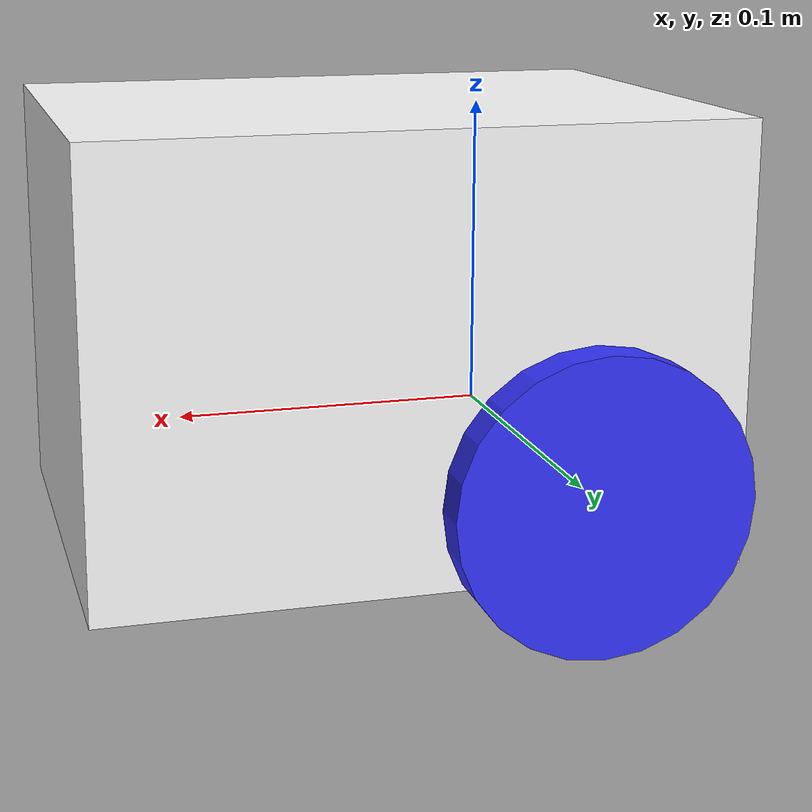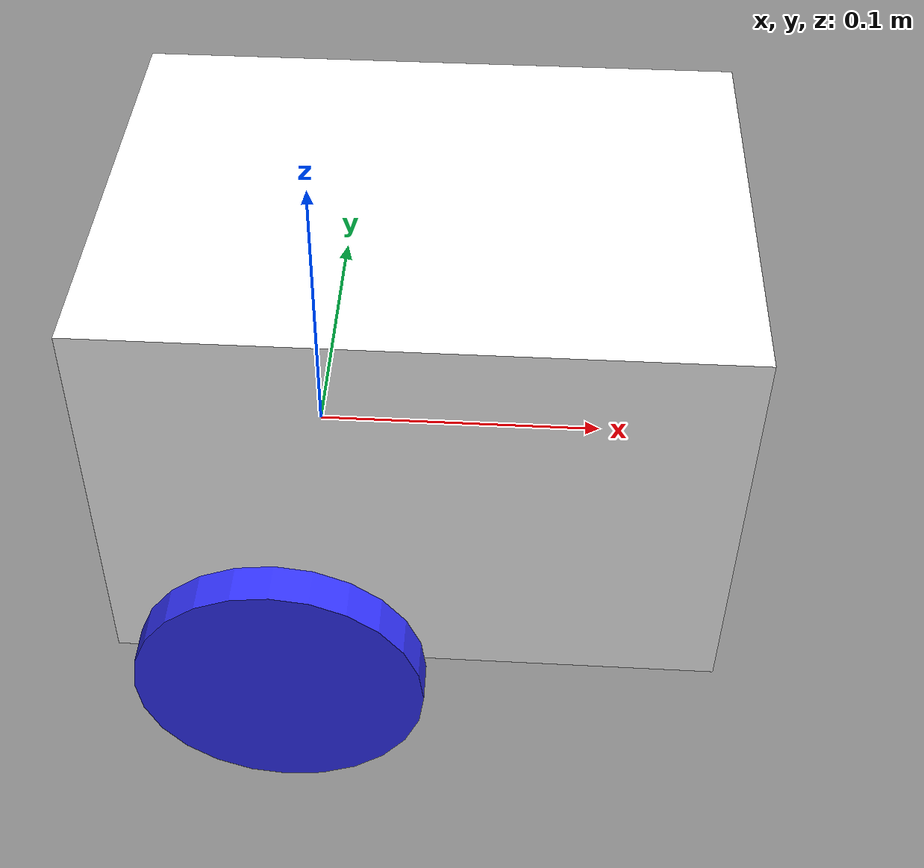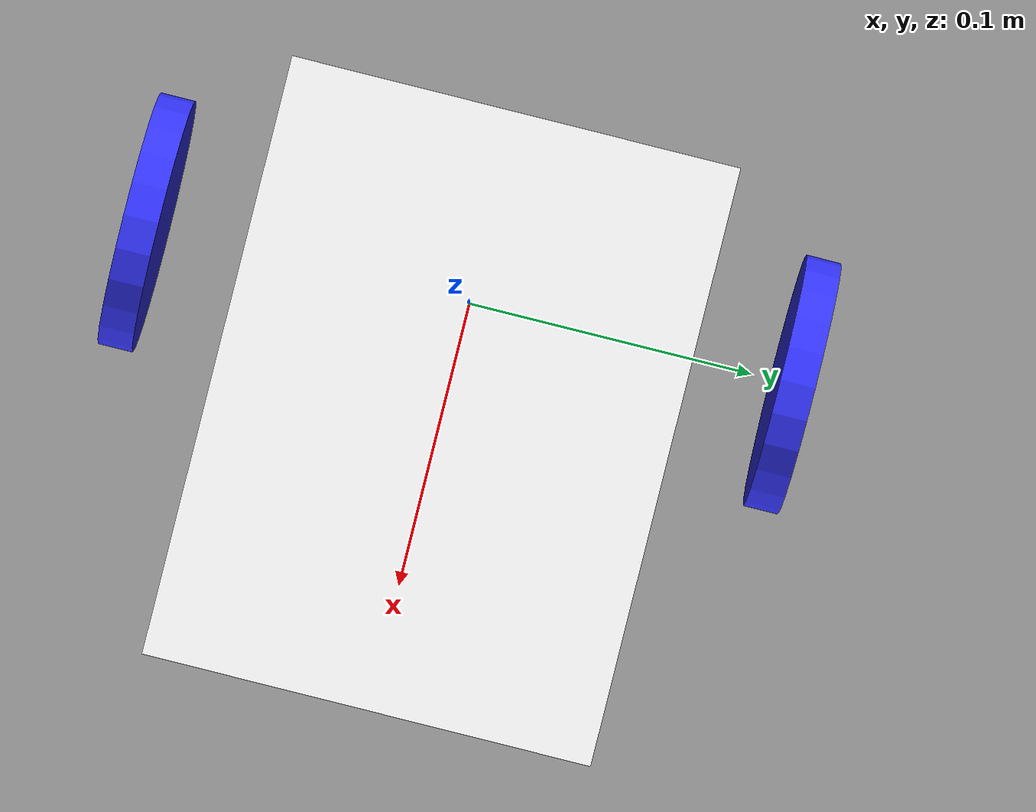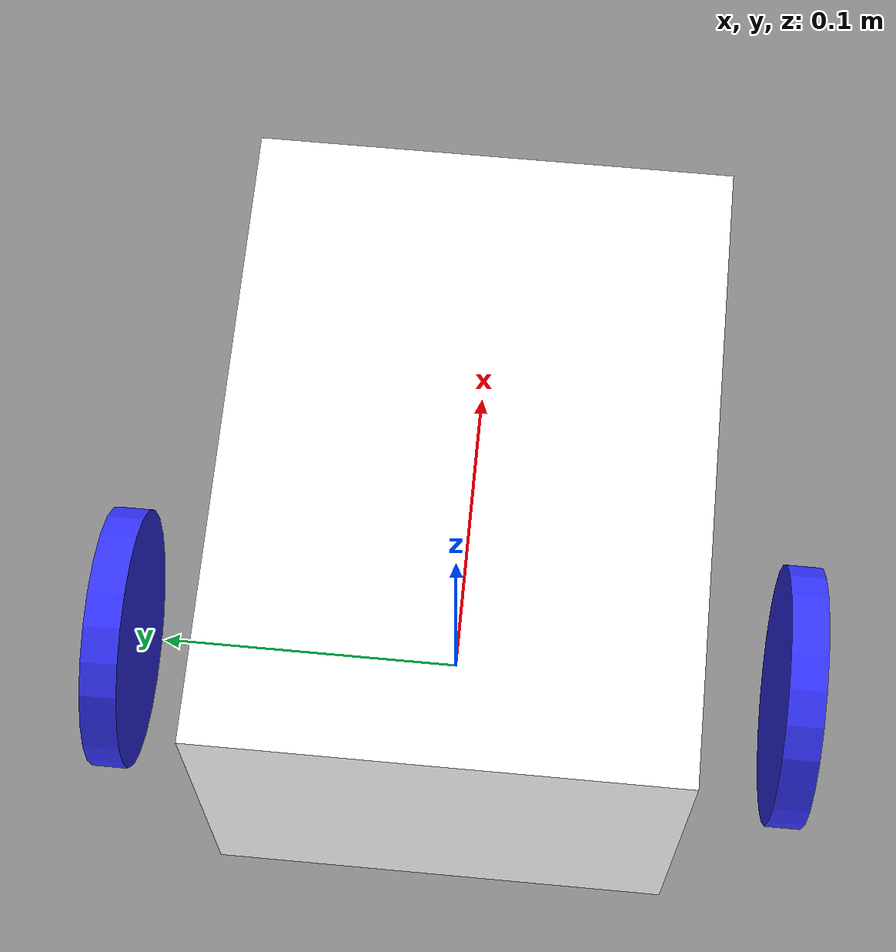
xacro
<?xml version="1.0"?>
<robot xmlns:xacro="http://www.ros.org/wiki/xacro" >

    <xacro:include filename="inertial_macros.xacro"/>

    <xacro:property name="chassis_length" value="0.2032"/>
    <xacro:property name="chassis_width" value="0.1524"/>
    <xacro:property name="chassis_height" value="0.1397"/>
    <xacro:property name="chassis_mass" value="1.0"/>
    <xacro:property name="wheel_radius" value="0.04445"/>
    <xacro:property name="wheel_thickness" value="0.01215"/>
    <xacro:property name="wheel_mass" value="0.01"/>
    <xacro:property name="wheel_offset_x" value="0.0635"/>
    <xacro:property name="wheel_offset_y" value="0.1143"/>
    <xacro:property name="wheel_offset_z" value="0.0381"/>
    <xacro:property name="caster_wheel_radius" value="0.014"/>
    <xacro:property name="caster_wheel_mass" value="0.01"/>
    <xacro:property name="caster_wheel_offset_x" value="0.1715"/>
    <xacro:property name="caster_wheel_offset_z" value="${wheel_offset_z - wheel_radius + caster_wheel_radius}"/>

    <material name="white">
        <color rgba="1 1 1 1" />
    </material>

    <material name="orange">
        <color rgba="1 0.3 0.1 1" />
    </material>

    <material name="blue">
        <color rgba="0.2 0.2 1 1" />
    </material>

    <material name="black">
        <color rgba="0 0 0 1" />
    </material>

    <material name="red">
        <color rgba="1 0 0 1" />
    </material>

    <!-- BASE LINK -->
    <!--baselink will be on the axes of the drive wheels, centered between the wheels-->
    <!--the rest of the robot will be described w.r. to base_link-->
    <link name="base_link">

    </link>

    <!-- BASE_FOOTPRINT LINK -->

    <joint name="base_footprint_joint" type="fixed">
        <parent link="base_link"/>
        <child link="base_footprint"/>
        <origin xyz="0 0 0" rpy="0 0 0"/>
    </joint>

    <link name="base_footprint">
    </link>

    <!-- CHASSIS LINK -->

    <joint name="chassis_joint" type="fixed">
        <parent link="base_link"/>
        <child link="chassis"/>
        <!--need to adjust origin to align wheels on chassis-->
        <origin xyz="${-wheel_offset_x} 0 ${-wheel_offset_z}"/>
    </joint>

    <link name="chassis">
        <visual>
            <!--need to adjust origin of chassis box to align robopet wheel positions-->
            <!--need to change box geometry, collision, and inertial tags-->
            <origin xyz="${chassis_length/2} 0 ${chassis_height/2}"/>
            <geometry>
                <box size="${chassis_length} ${chassis_width} ${chassis_height}"/>
            </geometry>
            <material name="white"/>
        </visual>
        <collision>
            <origin xyz="${chassis_length/2} 0 ${chassis_height/2}"/>
            <geometry>
                <box size="${chassis_length} ${chassis_width} ${chassis_height}"/>
            </geometry>
        </collision>
        <xacro:inertial_box mass="0.5" x="${chassis_length}" y="${chassis_width}" z="${chassis_height}">
            <origin xyz="${chassis_length/2} 0 ${chassis_height/2}" rpy="0 0 0"/>
        </xacro:inertial_box>
    </link>

    <gazebo reference="chassis">
        <material>Gazebo/White</material>
    </gazebo>

    <!-- LEFT WHEEL LINK -->

    <joint name="left_wheel_joint" type="continuous">
        <parent link="base_link"/>
        <child link="left_wheel"/>
        <!--adjust wheel joint origin to proper chassis width-->
        <origin xyz="0 ${wheel_offset_y} 0" rpy="-${pi/2} 0 0"/>
        <axis xyz="0 0 1"/>
    </joint>

    <link name="left_wheel">
        <!--need to adjust wheel geometry and inertial properties-->
        <visual>
            <geometry>
                <cylinder radius="${wheel_radius}" length="${wheel_thickness}"/>
            </geometry>
            <material name="blue"/>
        </visual>
        <collision>
            <geometry>
                <sphere radius="${wheel_radius}"/>
            </geometry>
        </collision>
        <xacro:inertial_cylinder mass="${wheel_mass}" length="${wheel_thickness}" radius="${wheel_radius}">
            <origin xyz="0 0 0" rpy="0 0 0"/>
        </xacro:inertial_cylinder>
    </link>

    <gazebo reference="left_wheel">
        <material>Gazebo/Blue</material>
    </gazebo>

    <!-- RIGHT WHEEL LINK -->

    <joint name="right_wheel_joint" type="continuous">
        <parent link="base_link"/>
        <child link="right_wheel"/>
        <!--adjust wheel joint origin to proper chassis width-->
        <origin xyz="0 ${-wheel_offset_y} 0" rpy="${pi/2} 0 0"/>
        <axis xyz="0 0 -1"/>
    </joint>

    <link name="right_wheel">
        <!--need to adjust wheel geometry and inertial properties-->
        <visual>
            <geometry>
                <cylinder radius="${wheel_radius}" length="${wheel_thickness}"/>
            </geometry>
            <material name="blue"/>
        </visual>
        <collision>
            <geometry>
                <sphere radius="${wheel_radius}"/>
            </geometry>
        </collision>
        <xacro:inertial_cylinder mass="${wheel_mass}" length="${wheel_thickness}" radius="${wheel_radius}">
            <origin xyz="0 0 0" rpy="0 0 0"/>
        </xacro:inertial_cylinder>
    </link>

    <gazebo reference="right_wheel">
        <material>Gazebo/Blue</material>
    </gazebo>

    <!-- CASTER WHEEL LINK -->
    <!--gonna keep caster wheel as is since it doesn't change much-->

    <joint name="caster_wheel_joint" type="fixed">
        <parent link="chassis"/>
        <child link="caster_wheel"/>
        <!--may adjust origin to align it on bot-->
        <origin xyz="${caster_wheel_offset_x} 0 ${caster_wheel_offset_z}"/>
    </joint>

    <link name="caster_wheel">
        <!--would consider adjusting radius to replicate ride height-->
        <visual>
            <geometry>
                <sphere radius="${caster_wheel_radius}"/>
            </geometry>
            <material name="black"/>
        </visual>
        <collision>
            <geometry>
                <sphere radius="${caster_wheel_radius}"/>
            </geometry>
        </collision>
        <xacro:inertial_sphere mass="${caster_wheel_mass}" radius="${caster_wheel_radius}">
            <origin xyz="0 0 0" rpy="0 0 0"/>
        </xacro:inertial_sphere>
    </link>

    <gazebo reference="caster_wheel">
        <material>Gazebo/Black</material>
        <mu1 value="0.001"/>
        <mu2 value="0.001"/>
    </gazebo>

</robot>
